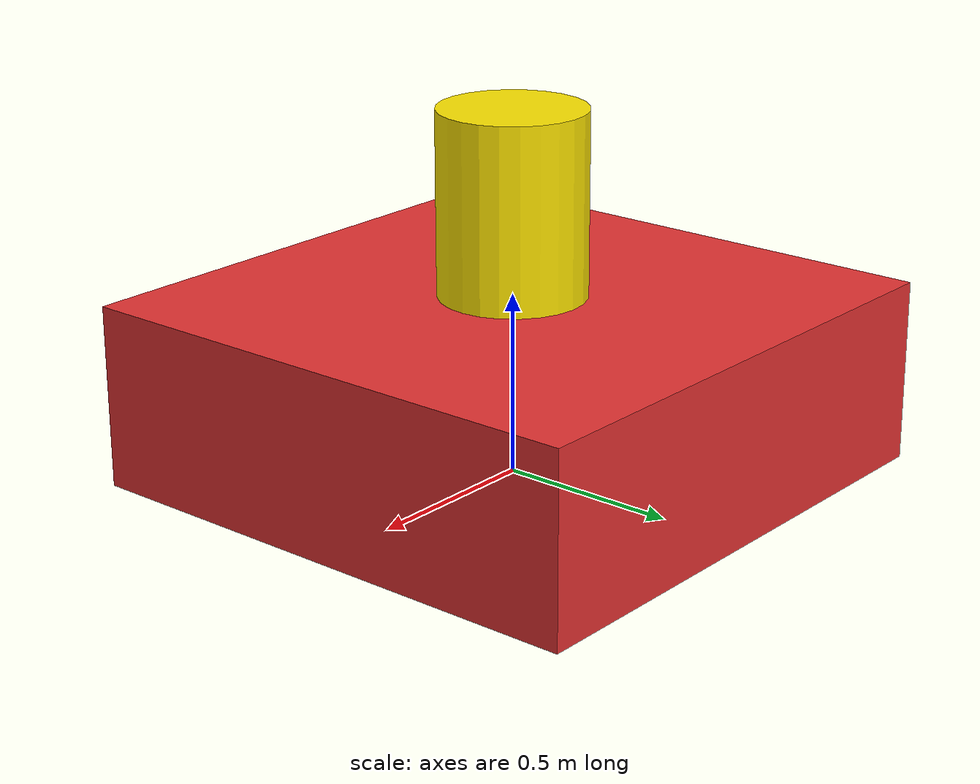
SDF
<?xml version="1.0"?>
<sdf version="1.9">
  <model name="dock">
    <pose>0 0 0.25 0 0 0</pose> <!-- rests on the ground -->
    <static>true</static>

    <link name="base_link">
      <inertial>
        <mass>10.0</mass>
        <inertia>
          <ixx>0.5</ixx><ixy>0.0</ixy><ixz>0.0</ixz>
          <iyy>0.5</iyy><iyz>0.0</iyz>
          <izz>0.5</izz>
        </inertia>
      </inertial>

      <collision name="collision">
        <geometry>
          <box><size>1.5 1.5 0.5</size></box>
        </geometry>
      </collision>

      <visual name="visual">
        <geometry>
          <box><size>1.5 1.5 0.5</size></box>
        </geometry>
        <material>
          <ambient>0.8 0.1 0.1 1</ambient>
          <diffuse>0.9 0.2 0.2 1</diffuse>
          <specular>0.5 0.5 0.5 1</specular>
        </material>
      </visual>

      <!-- Beacon on top for visibility -->
      <visual name="beacon">
        <pose>0 0 0.5 0 0 0</pose>
        <geometry>
          <cylinder>
            <radius>0.2</radius>
            <length>0.5</length>
          </cylinder>
        </geometry>
        <material>
          <ambient>1.0 0.8 0.0 1</ambient>
          <diffuse>1.0 0.9 0.0 1</diffuse>
          <emissive>0.5 0.4 0.0 1</emissive>
        </material>
      </visual>
    </link>
  </model>
</sdf>
